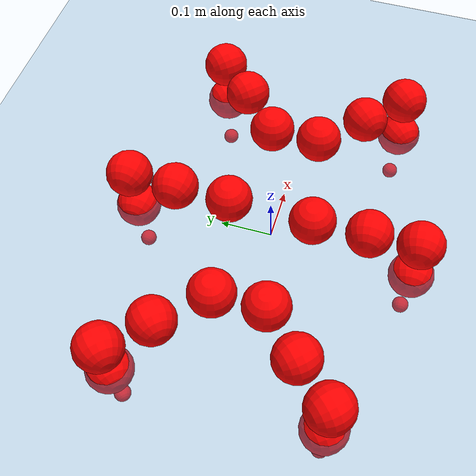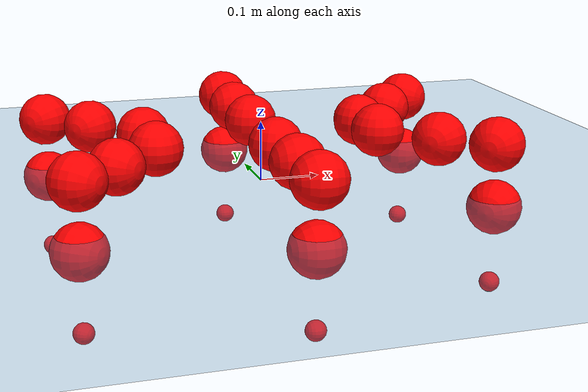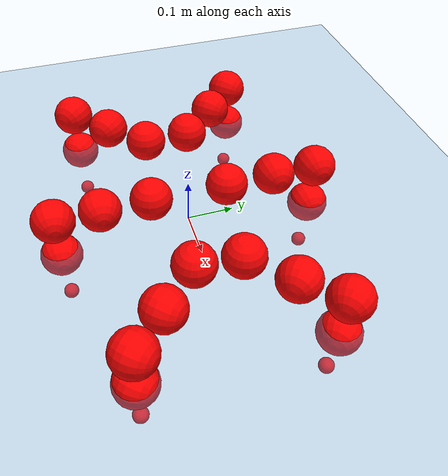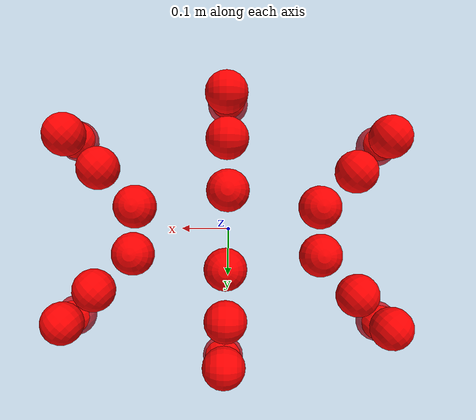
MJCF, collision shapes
<mujoco model="Golem">
  <compiler angle="radian" assetdir="assets" balanceinertia="true" inertiafromgeom="false"/>

  <option timestep="0.005" density="1.2" viscosity="2e-05"/>

  <size nkey="1"/>

  <visual>
    <quality shadowsize="8192"/>
    <map shadowclip="0.5"/>
  </visual>

  <default>
    <default class="/">
      <joint armature="0.01" damping="0.01" frictionloss="0.01"/>
      <geom contype="0" conaffinity="0" group="1" solref="-1000 -80"/>
      <site size="0.01 0.005 0.005" group="5"/>
      <general forcelimited="true" biastype="affine" gainprm="25" biasprm="0 -25 -0.5"/>
      <default class="visual">
        <geom type="mesh" group="2"/>
      </default>
      <default class="collision">
        <geom group="3"/>
      </default>
      <default class="foot">
        <geom size="0.01 0 0" condim="6" group="4" priority="1" solimp="0.015 1 0.01"/>
      </default>
      <default class="reward_collision_sphere">
        <geom group="5" rgba="1 0 0 1"/>
      </default>
    </default>
  </default>

  <asset>
    <texture type="skybox" colorspace="auto" name="//unnamed_texture_0" builtin="gradient" rgb1="0.95 0.95 0.95" rgb2="0.95 0.95 0.95" width="100" height="600"/>
    <texture type="2d" colorspace="auto" name="texplane" builtin="checker" rgb1="0.345 0.575 0.748" rgb2="0.345 0.575 0.748" markrgb="1 1 1" width="512" height="512"/>
    <material name="MatPlane" class="/" texture="texplane" texuniform="true" texrepeat="2 2" specular="0.9"/>
    <mesh name="body" class="/" file="body.stl" scale="0.001 0.001 0.001"/>
    <mesh name="coxa" class="/" file="coxa.stl" scale="0.001 0.001 0.001"/>
    <mesh name="femur" class="/" file="femur.stl" scale="0.001 0.001 0.001"/>
    <mesh name="tibia" class="/" file="tibia.stl" scale="0.001 0.001 0.001"/>
    <mesh name="tarsus" class="/" file="tarsus.stl" scale="0.001 0.001 0.001"/>
  </asset>

  <worldbody>
    <geom name="floor" class="/" size="100 100 0.125" type="plane" group="0" material="MatPlane"/>
    <light name="toplight_shadow" class="/" pos="0 0 5" dir="0.0990148 0.0990148 -0.990148" type="directional" ambient="0.04 0.04 0.04" diffuse="0.55 0.55 0.55" specular="0.12 0.12 0.12"/>
    <light name="toplight_fill" class="/" pos="0 0 5" dir="0.0990148 0.0990148 -0.990148" type="directional" castshadow="false" ambient="0.04 0.04 0.04" diffuse="0.3 0.3 0.3" specular="0.08 0.08 0.08"/>
    <body name="trunk" pos="0.00258684 0.00208967 0.00177061" quat="1 1.63368e-05 7.19543e-06 2.03706e-05">
      <inertial pos="-4.96676e-05 -0.00115911 -0.00113823" quat="0.999998 -0.00188749 0.00031247 -0.000181344" mass="4.95628" diaginertia="0.0235017 0.0051593 0.0287312"/>
      <joint name="//unnamed_joint_0" type="free"/>
      <geom name="//unnamed_geom_1" class="/" pos="0 0 0.0790245" quat="1 0 0 0" type="mesh" rgba="0.9 0.9 0.9 1" mesh="body"/>
      <site name="imu" class="/" pos="0.169546 0.0138464 0.122317" size="0.0110398"/>
      <camera name="track" class="/" pos="0 -1.75595 0" quat="0.707107 0.707107 0 0" mode="trackcom"/>
      <camera name="ego_camera" class="/" pos="0.155898 0 0.123476" quat="-0.5 -0.5 0.5 0.5"/>
      <body name="coxa_RR" pos="-0.213553 -0.0737204 0.0785545" quat="0.382685 -6.74983e-06 7.6914e-06 -0.923879">
        <inertial pos="-0.000408192 -0.00238515 -0.000559125" quat="0.999917 0.00573875 -0.00893743 0.00723575" mass="0.25766" diaginertia="0.023725 0.00498654 0.0273918"/>
        <joint name="coxa_joint_RR" class="/" pos="0 0 0" axis="0.000852357 -0.000509059 -1" range="-3.13271 3.13843" armature="0.00963497" damping="0" frictionloss="0.0111161"/>
        <geom name="//unnamed_geom_2" class="/" type="mesh" rgba="0.2 0.2 0.2 1" mesh="coxa"/>
        <geom name="//unnamed_geom_3" class="reward_collision_sphere" size="0.0441593" pos="-0.0359765 0 0"/>
        <body name="femur_RR" pos="0.0684093 -0.000673201 -0.00356913" quat="0.500026 -0.500107 0.499932 0.499934">
          <inertial pos="-0.00142255 -0.000667301 -0.00047225" quat="1 0.000425534 -0.000414275 -0.000231761" mass="0.269745" diaginertia="0.0248931 0.00521827 0.0295889"/>
          <joint name="femur_joint_RR" class="/" pos="0 0 0" axis="-0.00095882 0.00227664 -0.999997" range="-3.19509 3.08816" armature="0.0113471" damping="0.00913201" frictionloss="0.0125741"/>
          <geom name="//unnamed_geom_4" class="/" type="mesh" rgba="0.9 0.9 0.9 1" mesh="femur"/>
          <geom name="//unnamed_geom_5" class="reward_collision_sphere" size="0.0441593"/>
          <body name="tibia_RR" pos="-0.00422216 -0.0977437 0.00273629" quat="0.00038205 0.999999 -0.0010309 0.000370584">
            <inertial pos="-0.00278189 0.000881995 -0.000347959" quat="0.999997 0.00204508 0.000734408 0.00062188" mass="0.270866" diaginertia="0.0243772 0.00510518 0.0271481"/>
            <joint name="tibia_joint_RR" class="/" pos="0 0 0" axis="0.00212793 -0.0124826 0.99992" range="-3.1172 3.18284" armature="0.0116326" damping="0" frictionloss="0.0110388"/>
            <geom name="//unnamed_geom_6" class="/" type="mesh" rgba="0.2 0.2 0.2 1" mesh="tibia"/>
            <geom name="//unnamed_geom_7" class="reward_collision_sphere" size="0.0441593"/>
            <body name="tarsus_RR" pos="0.107183 -0.000281298 0.00221631" quat="1 1.1403e-05 0.000102983 -2.45804e-05">
              <inertial pos="0.0754908 0.000490142 0.00132535" quat="0.499765 0.498233 0.502384 0.499609" mass="0.27151" diaginertia="0.024825 0.00533469 0.029129"/>
              <joint name="tarsus_joint_RR" class="/" pos="0 0 0" axis="-0.00291447 0.00527158 0.999982" range="-3.19421 3.18592" armature="0.0112871" damping="0.0430032" frictionloss="0.0102702"/>
              <geom name="//unnamed_geom_8" class="/" type="mesh" rgba="0.9 0.9 0.9 1" mesh="tarsus"/>
              <geom name="foot_1" class="foot" size="0.01117" pos="0.134312 0 0" quat="0 -0.707107 0 0.707107"/>
              <geom name="//unnamed_geom_10" class="reward_collision_sphere" size="0.0441593"/>
              <geom name="//unnamed_geom_11" class="reward_collision_sphere" size="0.0165598" pos="0.128916 0 0"/>
              <site name="foot_1" class="foot" pos="0.134312 0 0" quat="0 -0.707107 0 0.707107" size="0.0110398"/>
            </body>
          </body>
        </body>
      </body>
      <body name="coxa_RM" pos="-0.000603238 -0.116521 0.0800863" quat="0.707011 -0.00109484 -0.000206264 -0.707202">
        <inertial pos="0.00275041 0.000100728 -0.000887649" quat="0.999982 -0.00333227 -0.00409327 -0.00279192" mass="0.266441" diaginertia="0.0243511 0.00507003 0.0296734"/>
        <joint name="coxa_joint_RM" class="/" pos="0 0 0" axis="0.00100053 0.00225487 -0.999997" stiffness="0.0071892" range="-3.14985 3.12013" armature="0.0109779" damping="0.000509188" frictionloss="0.00989375"/>
        <geom name="//unnamed_geom_12" class="/" type="mesh" rgba="0.2 0.2 0.2 1" mesh="coxa"/>
        <geom name="//unnamed_geom_13" class="reward_collision_sphere" size="0.0441593" pos="-0.0359765 0 0"/>
        <body name="femur_RM" pos="0.0695113 0.00246669 -0.000517674" quat="0.499841 -0.500123 0.499103 0.500931">
          <inertial pos="-0.000736754 -0.00107011 0.000176296" quat="0.999999 -0.000504491 0.00139032 0.000374555" mass="0.276615" diaginertia="0.0255771 0.00518801 0.0296863"/>
          <joint name="femur_joint_RM" class="/" pos="0 0 0" axis="0.00946885 -0.00341766 -0.999949" stiffness="0.00638144" range="-3.1524 3.14571" armature="0.0102995" damping="0.024588" frictionloss="0.0109541"/>
          <geom name="//unnamed_geom_14" class="/" type="mesh" rgba="0.9 0.9 0.9 1" mesh="femur"/>
          <geom name="//unnamed_geom_15" class="reward_collision_sphere" size="0.0441593"/>
          <body name="tibia_RM" pos="0.00145827 -0.0935191 0.00225941" quat="-5.74678e-05 1 6.02103e-05 -2.38479e-05">
            <inertial pos="0.00253015 -0.00262479 0.000441608" quat="0.999905 -0.00113757 0.00569847 -0.0124949" mass="0.258355" diaginertia="0.0244981 0.00534259 0.0289296"/>
            <joint name="tibia_joint_RM" class="/" pos="0 0 0" axis="-9.81234e-06 0.000340719 1" range="-3.19492 3.18103" armature="0.0108459" damping="0.0147883" frictionloss="0.0106101"/>
            <geom name="//unnamed_geom_16" class="/" type="mesh" rgba="0.2 0.2 0.2 1" mesh="tibia"/>
            <geom name="//unnamed_geom_17" class="reward_collision_sphere" size="0.0441593"/>
            <body name="tarsus_RM" pos="0.105355 -5.72886e-05 0.0027467" quat="1 -9.67483e-05 -3.48257e-05 2.16838e-05">
              <inertial pos="0.0714839 -0.00197392 0.00289916" quat="0.510606 0.498432 0.495223 0.495583" mass="0.276982" diaginertia="0.0238879 0.00506711 0.0276563"/>
              <joint name="tarsus_joint_RM" class="/" pos="0 0 0" axis="-0.000312663 0.000488982 1" range="-3.0934 3.14593" armature="0.0115841" damping="0.00924195" frictionloss="0.0108237"/>
              <geom name="//unnamed_geom_18" class="/" type="mesh" rgba="0.9 0.9 0.9 1" mesh="tarsus"/>
              <geom name="foot_2" class="foot" size="0.0109024" pos="0.134312 0 0" quat="0 -0.707107 0 0.707107"/>
              <geom name="//unnamed_geom_20" class="reward_collision_sphere" size="0.0441593"/>
              <geom name="//unnamed_geom_21" class="reward_collision_sphere" size="0.0165598" pos="0.128916 0 0"/>
              <site name="foot_2" class="foot" pos="0.134312 0 0" quat="0 -0.707107 0 0.707107" size="0.0110398"/>
            </body>
          </body>
        </body>
      </body>
      <body name="coxa_RF" pos="0.21223 -0.0706158 0.0815836" quat="0.923755 0.000262705 -0.000384068 -0.382985">
        <inertial pos="0.000287175 0.00188467 0.00036836" quat="1 -7.36546e-05 0.000578556 0.000193663" mass="0.265463" diaginertia="0.0247802 0.00517659 0.0280224"/>
        <joint name="coxa_joint_RF" class="/" pos="0 0 0" axis="0.000864932 -0.000837939 -0.999999" range="-3.13299 3.12575" armature="0.01257" damping="0.00421628" frictionloss="0.0108669"/>
        <geom name="//unnamed_geom_22" class="/" type="mesh" rgba="0.2 0.2 0.2 1" mesh="coxa"/>
        <geom name="//unnamed_geom_23" class="reward_collision_sphere" size="0.0441593" pos="-0.0359765 0 0"/>
        <body name="femur_RF" pos="0.0723649 -0.000628357 -0.00149852" quat="0.499925 -0.499989 0.500192 0.499895">
          <inertial pos="0.000967263 -0.00248018 0.00016626" quat="0.999988 0.00389421 -0.00145263 0.0025276" mass="0.264945" diaginertia="0.0247939 0.00498954 0.0291767"/>
          <joint name="femur_joint_RF" class="/" pos="0 0 0" axis="-0.000250942 -0.00121159 -0.999999" stiffness="0.00680879" range="-3.19007 3.13672" armature="0.00936773" damping="0.00807503" frictionloss="0.0125441"/>
          <geom name="//unnamed_geom_24" class="/" type="mesh" rgba="0.9 0.9 0.9 1" mesh="femur"/>
          <geom name="//unnamed_geom_25" class="reward_collision_sphere" size="0.0441593"/>
          <body name="tibia_RF" pos="-0.00283422 -0.0958475 0.00168502" quat="-0.000190781 1 -3.843e-06 -0.000217781">
            <inertial pos="-0.00216955 0.000113411 0.000932183" quat="1 0.000106375 0.000131498 -0.000135208" mass="0.275096" diaginertia="0.0238843 0.00530446 0.0283104"/>
            <joint name="tibia_joint_RF" class="/" pos="0 0 0" axis="0.0114163 -0.000202304 0.999935" range="-3.12819 3.08881" armature="0.0108227" damping="0.00863827" frictionloss="0.0111248"/>
            <geom name="//unnamed_geom_26" class="/" type="mesh" rgba="0.2 0.2 0.2 1" mesh="tibia"/>
            <geom name="//unnamed_geom_27" class="reward_collision_sphere" size="0.0441593"/>
            <body name="tarsus_RF" pos="0.10247 0.00226991 0.00340934" quat="0.999999 0.0011039 -0.000181458 0.000750725">
              <inertial pos="0.0716897 -0.000854403 0.000312209" quat="0.499097 0.500085 0.500442 0.500375" mass="0.2709" diaginertia="0.024435 0.00526966 0.0293735"/>
              <joint name="tarsus_joint_RF" class="/" pos="0 0 0" axis="0.0124208 0.00456762 0.999912" range="-3.1534 3.15105" armature="0.0121905" damping="0.0130274" frictionloss="0.01017"/>
              <geom name="//unnamed_geom_28" class="/" type="mesh" rgba="0.9 0.9 0.9 1" mesh="tarsus"/>
              <geom name="foot_3" class="foot" size="0.0120326" pos="0.134312 0 0" quat="0 -0.707107 0 0.707107"/>
              <geom name="//unnamed_geom_30" class="reward_collision_sphere" size="0.0441593"/>
              <geom name="//unnamed_geom_31" class="reward_collision_sphere" size="0.0165598" pos="0.128916 0 0"/>
              <site name="foot_3" class="foot" pos="0.134312 0 0" quat="0 -0.707107 0 0.707107" size="0.0110398"/>
            </body>
          </body>
        </body>
      </body>
      <body name="coxa_LR" pos="-0.215779 0.0746426 0.0791873" quat="0.38267 0.000217301 -4.90945e-05 0.923885">
        <inertial pos="-0.00255166 0.00120489 -0.00166413" quat="0.999923 -0.000690373 -0.0121838 0.00209516" mass="0.269265" diaginertia="0.0257436 0.00553106 0.0296412"/>
        <joint name="coxa_joint_LR" class="/" pos="0 0 0" axis="0.00745744 -0.0140219 -0.999874" stiffness="0.00922293" range="-3.13144 3.10528" armature="0.00991612" damping="0.00379537" frictionloss="0.009517"/>
        <geom name="//unnamed_geom_32" class="/" type="mesh" rgba="0.2 0.2 0.2 1" mesh="coxa"/>
        <geom name="//unnamed_geom_33" class="reward_collision_sphere" size="0.0441593" pos="-0.0359765 0 0"/>
        <body name="femur_LR" pos="0.0748927 -0.00259753 -0.00195027" quat="0.500005 -0.500067 0.499912 0.500016">
          <inertial pos="-0.00060917 -0.000764649 0.000366718" quat="0.999956 0.00144523 -0.00860147 0.00338421" mass="0.268998" diaginertia="0.0250803 0.00543279 0.029057"/>
          <joint name="femur_joint_LR" class="/" pos="0 0 0" axis="0.00729192 0.00872704 0.999935" range="-3.14404 3.14549" armature="0.01051" damping="0" frictionloss="0.00974518"/>
          <geom name="//unnamed_geom_34" class="/" type="mesh" rgba="0.9 0.9 0.9 1" mesh="femur"/>
          <geom name="//unnamed_geom_35" class="reward_collision_sphere" size="0.0441593"/>
          <body name="tibia_LR" pos="-0.0017036 -0.0955916 0.00218555" quat="0.00124273 0.999999 -0.000297377 0.000602228">
            <inertial pos="-8.91126e-05 9.4631e-05 0.000102869" quat="0.999986 -0.00236382 -0.00210434 0.00433847" mass="0.274448" diaginertia="0.0252615 0.00533611 0.029588"/>
            <joint name="tibia_joint_LR" class="/" pos="0 0 0" axis="-0.0070874 0.000239284 -0.999975" range="-3.17292 3.08415" armature="0.0112977" damping="0.00683498" frictionloss="0.0107987"/>
            <geom name="//unnamed_geom_36" class="/" type="mesh" rgba="0.2 0.2 0.2 1" mesh="tibia"/>
            <geom name="//unnamed_geom_37" class="reward_collision_sphere" size="0.0441593"/>
            <body name="tarsus_LR" pos="0.103909 0.000511843 0.00299465" quat="0.999999 0.00019592 -0.00131868 -0.000354808">
              <inertial pos="0.0751588 0.000429642 -0.00228781" quat="0.500003 0.499656 0.500126 0.500215" mass="0.261321" diaginertia="0.0248092 0.00504619 0.0288585"/>
              <joint name="tarsus_joint_LR" class="/" pos="0 0 0" axis="0.000269191 0.0103603 -0.999946" range="-3.19554 3.08345" armature="0.0106416" damping="0" frictionloss="0.0112032"/>
              <geom name="//unnamed_geom_38" class="/" type="mesh" rgba="0.9 0.9 0.9 1" mesh="tarsus"/>
              <geom name="foot_4" class="foot" size="0.0119895" pos="0.134312 0 0" quat="0.707107 0 -0.707107 0"/>
              <geom name="//unnamed_geom_40" class="reward_collision_sphere" size="0.0441593"/>
              <geom name="//unnamed_geom_41" class="reward_collision_sphere" size="0.0165598" pos="0.128916 0 0"/>
              <site name="foot_4" class="foot" pos="0.134312 0 0" quat="0.707107 0 -0.707107 0" size="0.0110398"/>
            </body>
          </body>
        </body>
      </body>
      <body name="coxa_LM" pos="0.00242534 0.115968 0.0814898" quat="0.707011 -0.000321232 0.000870921 0.707202">
        <inertial pos="-0.000185369 -0.000411455 -0.000693809" quat="0.999932 0.00657972 0.00693592 -0.00674622" mass="0.268097" diaginertia="0.0241343 0.00512964 0.0285884"/>
        <joint name="coxa_joint_LM" class="/" pos="0 0 0" axis="-0.00214016 0.00554792 -0.999982" range="-3.08366 3.13265" armature="0.0117204" damping="0.0192471" frictionloss="0.0125592"/>
        <geom name="//unnamed_geom_42" class="/" type="mesh" rgba="0.2 0.2 0.2 1" mesh="coxa"/>
        <geom name="//unnamed_geom_43" class="reward_collision_sphere" size="0.0441593" pos="-0.0359765 0 0"/>
        <body name="femur_LM" pos="0.0696311 0.0013054 0.00159871" quat="0.499246 -0.499948 0.500859 0.499946">
          <inertial pos="0.00136481 -0.0029669 0.0022921" quat="0.999915 -0.00315045 -0.0123496 -0.00264455" mass="0.267798" diaginertia="0.0251814 0.00505123 0.0287291"/>
          <joint name="femur_joint_LM" class="/" pos="0 0 0" axis="-0.0112373 0.00800704 0.999905" range="-3.1416 3.084" armature="0.01206" damping="0" frictionloss="0.0109487"/>
          <geom name="//unnamed_geom_44" class="/" type="mesh" rgba="0.9 0.9 0.9 1" mesh="femur"/>
          <geom name="//unnamed_geom_45" class="reward_collision_sphere" size="0.0441593"/>
          <body name="tibia_LM" pos="-0.001956 -0.0926957 -0.00238412" quat="-0.000428957 0.999999 0.000706562 -0.00086357">
            <inertial pos="-0.000749818 -0.00310633 7.59396e-05" quat="0.999928 0.00430535 0.0111766 0.000321127" mass="0.267953" diaginertia="0.024875 0.0054016 0.0287779"/>
            <joint name="tibia_joint_LM" class="/" pos="0 0 0" axis="0.00280342 0.00163938 -0.999995" range="-3.13391 3.13654" armature="0.012418" damping="0.00221951" frictionloss="0.010075"/>
            <geom name="//unnamed_geom_46" class="/" type="mesh" rgba="0.2 0.2 0.2 1" mesh="tibia"/>
            <geom name="//unnamed_geom_47" class="reward_collision_sphere" size="0.0441593"/>
            <body name="tarsus_LM" pos="0.106833 0.000167773 0.00192011" quat="0.999999 0.000713989 0.000282365 -0.000725506">
              <inertial pos="0.0694658 -0.000472791 -0.00165285" quat="0.500201 0.500037 0.49985 0.499911" mass="0.2694" diaginertia="0.0238762 0.00512108 0.0287962"/>
              <joint name="tarsus_joint_LM" class="/" pos="0 0 0" axis="0.000143105 0.00283086 -0.999996" range="-3.09299 3.12554" armature="0.0125882" damping="0.00338739" frictionloss="0.0114539"/>
              <geom name="//unnamed_geom_48" class="/" type="mesh" rgba="0.9 0.9 0.9 1" mesh="tarsus"/>
              <geom name="foot_5" class="foot" size="0.0114148" pos="0.134312 0 0" quat="0.707107 0 -0.707107 0"/>
              <geom name="//unnamed_geom_50" class="reward_collision_sphere" size="0.0441593"/>
              <geom name="//unnamed_geom_51" class="reward_collision_sphere" size="0.0165598" pos="0.128916 0 0"/>
              <site name="foot_5" class="foot" pos="0.134312 0 0" quat="0.707107 0 -0.707107 0" size="0.0110398"/>
            </body>
          </body>
        </body>
      </body>
      <body name="coxa_LF" pos="0.215831 0.0760644 0.0765501" quat="0.92389 0.000385173 0.00021815 0.382659">
        <inertial pos="8.58858e-05 -0.00024575 -0.000539478" quat="0.999921 0.00934475 -0.00829617 -0.00154178" mass="0.254138" diaginertia="0.02397 0.00507673 0.0281639"/>
        <joint name="coxa_joint_LF" class="/" pos="0 0 0" axis="0.00169051 -0.00333361 -0.999993" stiffness="0.00951065" range="-3.163 3.18464" armature="0.0124369" damping="0.00723763" frictionloss="0.00968872"/>
        <geom name="//unnamed_geom_52" class="/" type="mesh" rgba="0.2 0.2 0.2 1" mesh="coxa"/>
        <geom name="//unnamed_geom_53" class="reward_collision_sphere" size="0.0441593" pos="-0.0359765 0 0"/>
        <body name="femur_LF" pos="0.0721874 -0.00233858 0.00107909" quat="0.499596 -0.499545 0.499766 0.501092">
          <inertial pos="0.00236948 -0.000482934 -0.000201636" quat="0.999997 0.00173317 0.00150707 -0.000870092" mass="0.273667" diaginertia="0.0248841 0.00520313 0.0279805"/>
          <joint name="femur_joint_LF" class="/" pos="0 0 0" axis="-8.33124e-05 -7.84736e-05 1" range="-3.09463 3.1193" armature="0.0125856" damping="0.0191625" frictionloss="0.0113792"/>
          <geom name="//unnamed_geom_54" class="/" type="mesh" rgba="0.9 0.9 0.9 1" mesh="femur"/>
          <geom name="//unnamed_geom_55" class="reward_collision_sphere" size="0.0441593"/>
          <body name="tibia_LF" pos="-0.00096425 -0.0929163 0.00289937" quat="0.00023135 1 -1.8093e-05 5.09234e-05">
            <inertial pos="-0.000229001 0.00280953 0.00104601" quat="0.999999 0.00137625 0.000649364 0.000792161" mass="0.264482" diaginertia="0.024864 0.00517852 0.0285655"/>
            <joint name="tibia_joint_LF" class="/" pos="0 0 0" axis="0.00177451 0.00533258 -0.999984" range="-3.1442 3.12928" armature="0.00970145" damping="0" frictionloss="0.0119101"/>
            <geom name="//unnamed_geom_56" class="/" type="mesh" rgba="0.2 0.2 0.2 1" mesh="tibia"/>
            <geom name="//unnamed_geom_57" class="reward_collision_sphere" size="0.0441593"/>
            <body name="tarsus_LF" pos="0.106747 0.0017508 0.000993176" quat="0.999999 0.000718761 -0.000735202 -0.000823644">
              <inertial pos="0.0728914 -0.000111745 -0.00140241" quat="0.498186 0.500985 0.509448 0.491211" mass="0.273845" diaginertia="0.0245572 0.00537257 0.0291182"/>
              <joint name="tarsus_joint_LF" class="/" pos="0 0 0" axis="-0.00424742 -0.00608064 -0.999972" stiffness="0.023942" range="-3.19308 3.16558" armature="0.0108494" damping="0.024425" frictionloss="0.0112711"/>
              <geom name="//unnamed_geom_58" class="/" type="mesh" rgba="0.9 0.9 0.9 1" mesh="tarsus"/>
              <geom name="foot_6" class="foot" size="0.0106391" pos="0.134312 0 0" quat="0.707107 0 -0.707107 0"/>
              <geom name="//unnamed_geom_60" class="reward_collision_sphere" size="0.0441593"/>
              <geom name="//unnamed_geom_61" class="reward_collision_sphere" size="0.0165598" pos="0.128916 0 0"/>
              <site name="foot_6" class="foot" pos="0.134312 0 0" quat="0.707107 0 -0.707107 0" size="0.0110398"/>
            </body>
          </body>
        </body>
      </body>
    </body>
  </worldbody>

  <contact>
    <pair class="/" geom1="floor" geom2="foot_1" name="//unnamed_contact_0"/>
    <pair class="/" geom1="floor" geom2="foot_2" name="//unnamed_contact_1"/>
    <pair class="/" geom1="floor" geom2="foot_3" name="//unnamed_contact_2"/>
    <pair class="/" geom1="floor" geom2="foot_4" name="//unnamed_contact_3"/>
    <pair class="/" geom1="floor" geom2="foot_5" name="//unnamed_contact_4"/>
    <pair class="/" geom1="floor" geom2="foot_6" name="//unnamed_contact_5"/>
  </contact>

  <actuator>
    <general name="coxa_joint_RR" class="/" joint="coxa_joint_RR" forcerange="-7.80819 7.80819" gainprm="26.1599" biasprm="0 -26.1599 -0.598815"/>
    <general name="femur_joint_RR" class="/" joint="femur_joint_RR" forcerange="-8.06669 8.06669" gainprm="26.1599" biasprm="0 -26.1599 -0.598815"/>
    <general name="tibia_joint_RR" class="/" joint="tibia_joint_RR" forcerange="-8.10794 8.10794" gainprm="26.1599" biasprm="0 -26.1599 -0.598815"/>
    <general name="tarsus_joint_RR" class="/" joint="tarsus_joint_RR" forcerange="-8.87577 8.87577" gainprm="26.1599" biasprm="0 -26.1599 -0.598815"/>
    <general name="coxa_joint_RM" class="/" joint="coxa_joint_RM" forcerange="-7.30934 7.30934" gainprm="26.1599" biasprm="0 -26.1599 -0.598815"/>
    <general name="femur_joint_RM" class="/" joint="femur_joint_RM" forcerange="-8.3506 8.3506" gainprm="26.1599" biasprm="0 -26.1599 -0.598815"/>
    <general name="tibia_joint_RM" class="/" joint="tibia_joint_RM" forcerange="-7.38977 7.38977" gainprm="26.1599" biasprm="0 -26.1599 -0.598815"/>
    <general name="tarsus_joint_RM" class="/" joint="tarsus_joint_RM" forcerange="-7.84177 7.84177" gainprm="26.1599" biasprm="0 -26.1599 -0.598815"/>
    <general name="coxa_joint_RF" class="/" joint="coxa_joint_RF" forcerange="-7.25636 7.25636" gainprm="26.1599" biasprm="0 -26.1599 -0.598815"/>
    <general name="femur_joint_RF" class="/" joint="femur_joint_RF" forcerange="-7.49992 7.49992" gainprm="26.1599" biasprm="0 -26.1599 -0.598815"/>
    <general name="tibia_joint_RF" class="/" joint="tibia_joint_RF" forcerange="-7.35641 7.35641" gainprm="26.1599" biasprm="0 -26.1599 -0.598815"/>
    <general name="tarsus_joint_RF" class="/" joint="tarsus_joint_RF" forcerange="-8.55905 8.55905" gainprm="26.1599" biasprm="0 -26.1599 -0.598815"/>
    <general name="coxa_joint_LR" class="/" joint="coxa_joint_LR" forcerange="-8.01629 8.01629" gainprm="26.1599" biasprm="0 -26.1599 -0.598815"/>
    <general name="femur_joint_LR" class="/" joint="femur_joint_LR" forcerange="-8.1017 8.1017" gainprm="26.1599" biasprm="0 -26.1599 -0.598815"/>
    <general name="tibia_joint_LR" class="/" joint="tibia_joint_LR" forcerange="-8.01836 8.01836" gainprm="26.1599" biasprm="0 -26.1599 -0.598815"/>
    <general name="tarsus_joint_LR" class="/" joint="tarsus_joint_LR" forcerange="-8.16098 8.16098" gainprm="26.1599" biasprm="0 -26.1599 -0.598815"/>
    <general name="coxa_joint_LM" class="/" joint="coxa_joint_LM" forcerange="-8.89927 8.89927" gainprm="26.1599" biasprm="0 -26.1599 -0.598815"/>
    <general name="femur_joint_LM" class="/" joint="femur_joint_LM" forcerange="-8.01213 8.01213" gainprm="26.1599" biasprm="0 -26.1599 -0.598815"/>
    <general name="tibia_joint_LM" class="/" joint="tibia_joint_LM" forcerange="-8.24804 8.24804" gainprm="26.1599" biasprm="0 -26.1599 -0.598815"/>
    <general name="tarsus_joint_LM" class="/" joint="tarsus_joint_LM" forcerange="-8.08208 8.08208" gainprm="26.1599" biasprm="0 -26.1599 -0.598815"/>
    <general name="coxa_joint_LF" class="/" joint="coxa_joint_LF" forcerange="-7.38631 7.38631" gainprm="26.1599" biasprm="0 -26.1599 -0.598815"/>
    <general name="femur_joint_LF" class="/" joint="femur_joint_LF" forcerange="-8.22414 8.22414" gainprm="26.1599" biasprm="0 -26.1599 -0.598815"/>
    <general name="tibia_joint_LF" class="/" joint="tibia_joint_LF" forcerange="-7.80683 7.80683" gainprm="26.1599" biasprm="0 -26.1599 -0.598815"/>
    <general name="tarsus_joint_LF" class="/" joint="tarsus_joint_LF" forcerange="-7.48781 7.48781" gainprm="26.1599" biasprm="0 -26.1599 -0.598815"/>
  </actuator>

  <sensor>
    <gyro site="imu" name="imu_angular_velocity"/>
    <velocimeter site="imu" name="imu_linear_velocity"/>
    <framelinvel objtype="site" objname="foot_1" name="foot_1_global_linear_velocity"/>
    <framelinvel objtype="site" objname="foot_2" name="foot_2_global_linear_velocity"/>
    <framelinvel objtype="site" objname="foot_3" name="foot_3_global_linear_velocity"/>
    <framelinvel objtype="site" objname="foot_4" name="foot_4_global_linear_velocity"/>
    <framelinvel objtype="site" objname="foot_5" name="foot_5_global_linear_velocity"/>
    <framelinvel objtype="site" objname="foot_6" name="foot_6_global_linear_velocity"/>
  </sensor>

  <keyframe>
    <key name="home" qpos="0 0 0.1457 1 0 0 0 0 0 0 0 0 0 0 0 0 0 0 0 0 0 0 0 0 0 0 0 0 0 0 0"/>
  </keyframe>
</mujoco>
